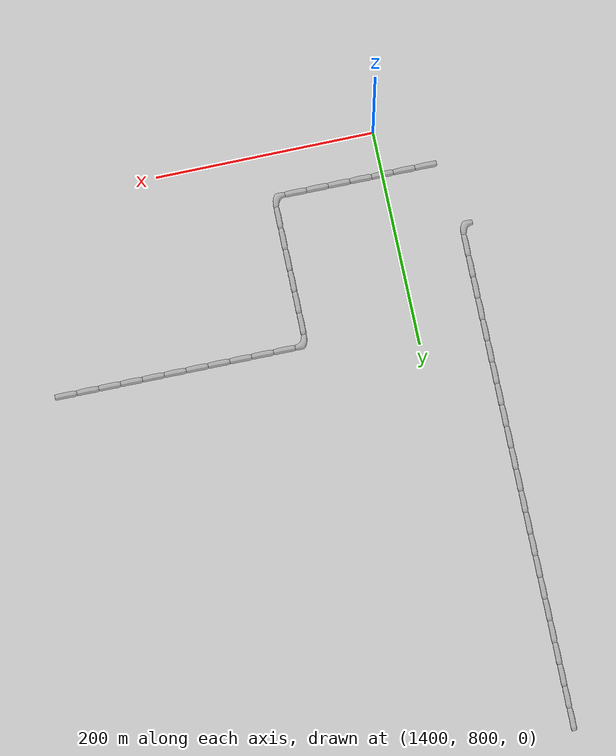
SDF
<sdf version="1.6">
 <world name="cave_16000_16">
  <include>
   <static>true</static>
   <name>cave_68_42</name>
   <pose>1360 840 0 0 0 1.5707963267948966</pose>
   <uri>model://cave_straight_20m</uri>
  </include>
  <include>
   <static>true</static>
   <name>cave_69_42</name>
   <pose>1380 840 0 0 0 1.5707963267948966</pose>
   <uri>model://cave_straight_20m</uri>
  </include>
  <include>
   <static>true</static>
   <name>cave_70_42</name>
   <pose>1400 840 0 0 0 1.5707963267948966</pose>
   <uri>model://cave_straight_20m</uri>
  </include>
  <include>
   <static>true</static>
   <name>cave_71_42</name>
   <pose>1420 840 0 0 0 1.5707963267948966</pose>
   <uri>model://cave_straight_20m</uri>
  </include>
  <include>
   <static>true</static>
   <name>cave_72_42</name>
   <pose>1440 840 0 0 0 1.5707963267948966</pose>
   <uri>model://cave_straight_20m</uri>
  </include>
  <include>
   <static>true</static>
   <name>cave_73_42</name>
   <pose>1460 840 0 0 0 1.5707963267948966</pose>
   <uri>model://cave_straight_20m</uri>
  </include>
  <include>
   <static>true</static>
   <name>cave_74_42</name>
   <pose>1480 840 0 0 0 1.5707963267948966</pose>
   <uri>model://cave_straight_20m</uri>
  </include>
  <include>
   <static>true</static>
   <name>cave_75_42</name>
   <pose>1500 840 0 0 0 1.5707963267948966</pose>
   <uri>model://cave_L_20m</uri>
  </include>
  <include>
   <static>true</static>
   <name>cave_75_43</name>
   <pose>1500 860 0 0 0 0.0</pose>
   <uri>model://cave_straight_20m</uri>
  </include>
  <include>
   <static>true</static>
   <name>cave_75_44</name>
   <pose>1500 880 0 0 0 0.0</pose>
   <uri>model://cave_straight_20m</uri>
  </include>
  <include>
   <static>true</static>
   <name>cave_75_45</name>
   <pose>1500 900 0 0 0 0.0</pose>
   <uri>model://cave_straight_20m</uri>
  </include>
  <include>
   <static>true</static>
   <name>cave_75_46</name>
   <pose>1500 920 0 0 0 0.0</pose>
   <uri>model://cave_straight_20m</uri>
  </include>
  <include>
   <static>true</static>
   <name>cave_75_47</name>
   <pose>1500 940 0 0 0 0.0</pose>
   <uri>model://cave_straight_20m</uri>
  </include>
  <include>
   <static>true</static>
   <name>cave_75_48</name>
   <pose>1500 960 0 0 0 0.0</pose>
   <uri>model://cave_straight_20m</uri>
  </include>
  <include>
   <static>true</static>
   <name>cave_75_49</name>
   <pose>1500 980 0 0 0 -1.5707963267948966</pose>
   <uri>model://cave_L_20m</uri>
  </include>
  <include>
   <static>true</static>
   <name>cave_76_49</name>
   <pose>1520 980 0 0 0 1.5707963267948966</pose>
   <uri>model://cave_straight_20m</uri>
  </include>
  <include>
   <static>true</static>
   <name>cave_77_49</name>
   <pose>1540 980 0 0 0 1.5707963267948966</pose>
   <uri>model://cave_straight_20m</uri>
  </include>
  <include>
   <static>true</static>
   <name>cave_78_49</name>
   <pose>1560 980 0 0 0 1.5707963267948966</pose>
   <uri>model://cave_straight_20m</uri>
  </include>
  <include>
   <static>true</static>
   <name>cave_79_49</name>
   <pose>1580 980 0 0 0 1.5707963267948966</pose>
   <uri>model://cave_straight_20m</uri>
  </include>
  <include>
   <static>true</static>
   <name>cave_80_49</name>
   <pose>1600 980 0 0 0 1.5707963267948966</pose>
   <uri>model://cave_straight_20m</uri>
  </include>
  <include>
   <static>true</static>
   <name>cave_81_49</name>
   <pose>1620 980 0 0 0 1.5707963267948966</pose>
   <uri>model://cave_straight_20m</uri>
  </include>
  <include>
   <static>true</static>
   <name>cave_82_49</name>
   <pose>1640 980 0 0 0 1.5707963267948966</pose>
   <uri>model://cave_straight_20m</uri>
  </include>
  <include>
   <static>true</static>
   <name>cave_83_49</name>
   <pose>1660 980 0 0 0 1.5707963267948966</pose>
   <uri>model://cave_straight_20m</uri>
  </include>
  <include>
   <static>true</static>
   <name>cave_84_49</name>
   <pose>1680 980 0 0 0 1.5707963267948966</pose>
   <uri>model://cave_straight_20m</uri>
  </include>
  <include>
   <static>true</static>
   <name>cave_85_49</name>
   <pose>1700 980 0 0 0 1.5707963267948966</pose>
   <uri>model://cave_straight_20m</uri>
  </include>
  <include>
   <static>true</static>
   <name>cave_86_49</name>
   <pose>1720 980 0 0 0 1.5707963267948966</pose>
   <uri>model://cave_straight_20m</uri>
  </include>
  <include>
   <static>true</static>
   <name>cave_67_45</name>
   <pose>1340 900 0 0 0 1.5707963267948966</pose>
   <uri>model://cave_L_20m</uri>
  </include>
  <include>
   <static>true</static>
   <name>cave_67_46</name>
   <pose>1340 920 0 0 0 0.0</pose>
   <uri>model://cave_straight_20m</uri>
  </include>
  <include>
   <static>true</static>
   <name>cave_67_47</name>
   <pose>1340 940 0 0 0 0.0</pose>
   <uri>model://cave_straight_20m</uri>
  </include>
  <include>
   <static>true</static>
   <name>cave_67_48</name>
   <pose>1340 960 0 0 0 0.0</pose>
   <uri>model://cave_straight_20m</uri>
  </include>
  <include>
   <static>true</static>
   <name>cave_67_49</name>
   <pose>1340 980 0 0 0 0.0</pose>
   <uri>model://cave_straight_20m</uri>
  </include>
  <include>
   <static>true</static>
   <name>cave_67_50</name>
   <pose>1340 1000 0 0 0 0.0</pose>
   <uri>model://cave_straight_20m</uri>
  </include>
  <include>
   <static>true</static>
   <name>cave_67_51</name>
   <pose>1340 1020 0 0 0 0.0</pose>
   <uri>model://cave_straight_20m</uri>
  </include>
  <include>
   <static>true</static>
   <name>cave_67_52</name>
   <pose>1340 1040 0 0 0 0.0</pose>
   <uri>model://cave_straight_20m</uri>
  </include>
  <include>
   <static>true</static>
   <name>cave_67_53</name>
   <pose>1340 1060 0 0 0 0.0</pose>
   <uri>model://cave_straight_20m</uri>
  </include>
  <include>
   <static>true</static>
   <name>cave_67_54</name>
   <pose>1340 1080 0 0 0 0.0</pose>
   <uri>model://cave_straight_20m</uri>
  </include>
  <include>
   <static>true</static>
   <name>cave_67_55</name>
   <pose>1340 1100 0 0 0 0.0</pose>
   <uri>model://cave_straight_20m</uri>
  </include>
  <include>
   <static>true</static>
   <name>cave_67_56</name>
   <pose>1340 1120 0 0 0 0.0</pose>
   <uri>model://cave_straight_20m</uri>
  </include>
  <include>
   <static>true</static>
   <name>cave_67_57</name>
   <pose>1340 1140 0 0 0 0.0</pose>
   <uri>model://cave_straight_20m</uri>
  </include>
  <include>
   <static>true</static>
   <name>cave_67_58</name>
   <pose>1340 1160 0 0 0 0.0</pose>
   <uri>model://cave_straight_20m</uri>
  </include>
  <include>
   <static>true</static>
   <name>cave_67_59</name>
   <pose>1340 1180 0 0 0 0.0</pose>
   <uri>model://cave_straight_20m</uri>
  </include>
  <include>
   <static>true</static>
   <name>cave_67_60</name>
   <pose>1340 1200 0 0 0 0.0</pose>
   <uri>model://cave_straight_20m</uri>
  </include>
  <include>
   <static>true</static>
   <name>cave_67_61</name>
   <pose>1340 1220 0 0 0 0.0</pose>
   <uri>model://cave_straight_20m</uri>
  </include>
  <include>
   <static>true</static>
   <name>cave_67_62</name>
   <pose>1340 1240 0 0 0 0.0</pose>
   <uri>model://cave_straight_20m</uri>
  </include>
  <include>
   <static>true</static>
   <name>cave_67_63</name>
   <pose>1340 1260 0 0 0 0.0</pose>
   <uri>model://cave_straight_20m</uri>
  </include>
  <include>
   <static>true</static>
   <name>cave_67_64</name>
   <pose>1340 1280 0 0 0 0.0</pose>
   <uri>model://cave_straight_20m</uri>
  </include>
  <include>
   <static>true</static>
   <name>cave_67_65</name>
   <pose>1340 1300 0 0 0 0.0</pose>
   <uri>model://cave_straight_20m</uri>
  </include>
  <include>
   <static>true</static>
   <name>cave_67_66</name>
   <pose>1340 1320 0 0 0 0.0</pose>
   <uri>model://cave_straight_20m</uri>
  </include>
  <include>
   <static>true</static>
   <name>cave_67_67</name>
   <pose>1340 1340 0 0 0 0.0</pose>
   <uri>model://cave_straight_20m</uri>
  </include>
  <include>
   <static>true</static>
   <name>cave_67_68</name>
   <pose>1340 1360 0 0 0 0.0</pose>
   <uri>model://cave_straight_20m</uri>
  </include>
 </world>
</sdf>
